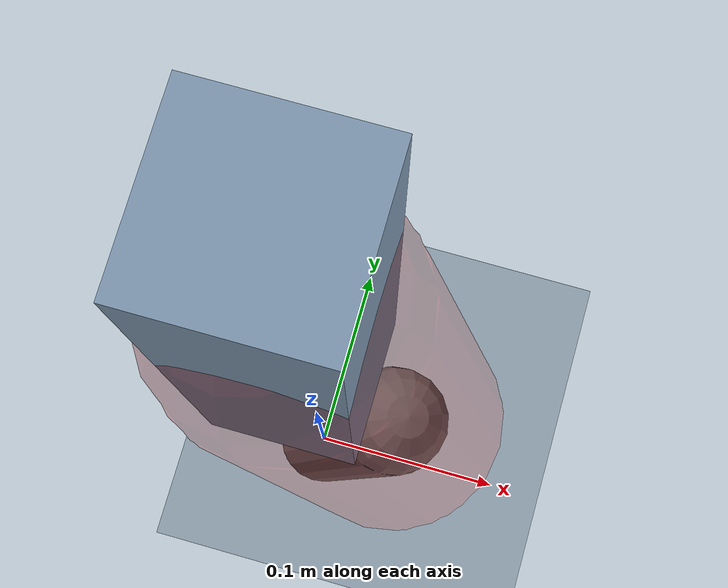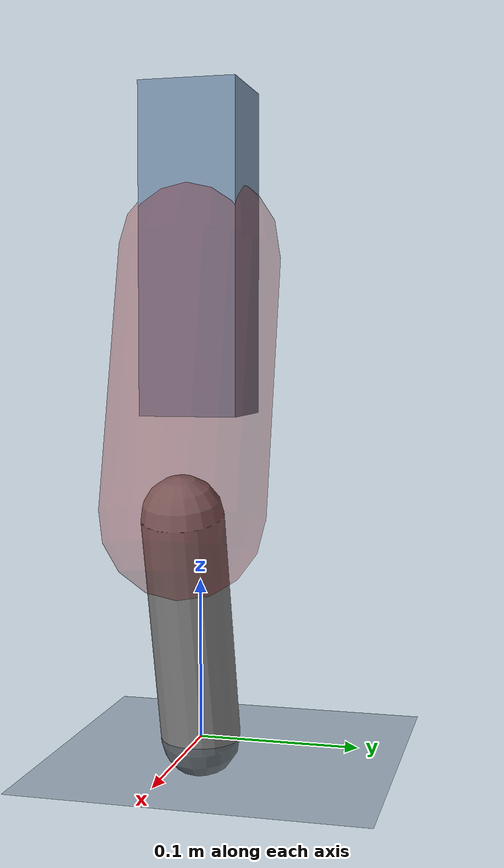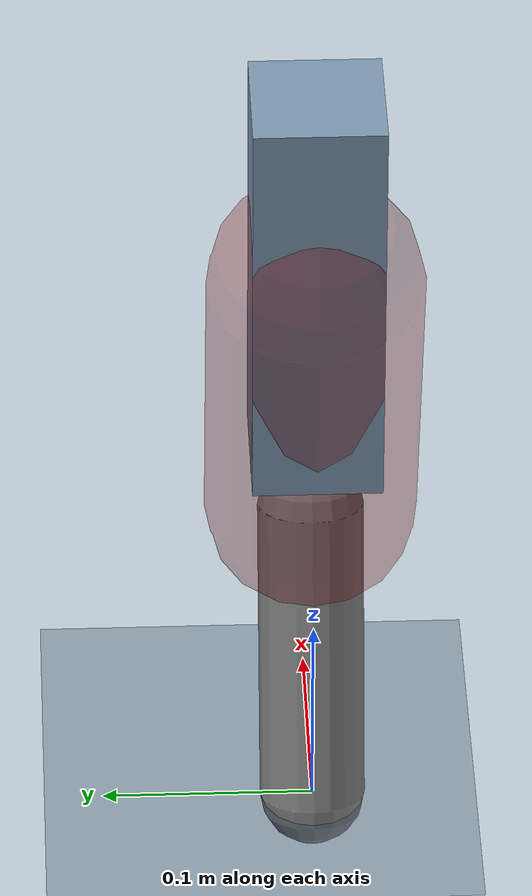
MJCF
<mujoco model="Hopper2D">
	<compiler inertiafromgeom="true" angle="radian" />
	<option timestep="0.001" integrator="implicit" cone="elliptic" solver="Newton" tolerance="1e-10" />

	<default>
		<geom contype="1" conaffinity="1" condim="3" friction="2 0.005 0.0001" solref="0.005 1" />
		<joint limited="true" damping="0.1" />
	</default>

	<asset>
		<texture name="skybox" type="skybox" builtin="gradient" rgb1=".4 .6 .8" rgb2="0 0 0" width="800" height="800" />
		<texture name="grid" type="2d" builtin="checker" rgb1=".1 .2 .3" rgb2=".2 .3 .4" width="300" height="300" mark="edge" markrgb=".2 .3 .4" />
		<material name="ground" texture="grid" texrepeat="1 1" texuniform="true" reflectance="0.1" />
		<material name="leg" rgba="0.5 0.6 0.7 1" />
	</asset>

	<worldbody>

		<geom name="floor" type="plane" size="5 5 0.25" material="ground" />

		<light directional="false" diffuse="0.8 0.8 0.8" specular="0.3 0.3 0.3" pos="0 0 2" dir="0 0 -1" />
		<light mode="targetbodycom" target="base" directional="false" diffuse="0.8 0.8 0.8" specular="0.3 0.3 0.3" pos="0 0 2" dir="0 0 -1" />

		<camera name="fixed" pos="0 -2 1" xyaxes="1 0 0 0 0 1" />
		<camera name="tracking" mode="trackcom" pos="0 -3 1" />

		<body name="root" pos="0 0 0.30384315006497087">
			<joint name="slide_x" type="slide" axis="1 0 0" range="-100 100" />
			<joint name="slide_z" type="slide" axis="0 0 1" range="0 10" />

			<body name="base" pos="0 0 0">
				<geom name="torso" type="box" size="0.03 0.03 0.1" mass="2.15" material="leg" />

				<body name="link1" pos="0 0 0" euler="0 1.328743882196557 0">
					<joint type="hinge" axis="0 -1 0" pos="0 0 0" name="hinge1" limited="true" range="-3.14 3.14" stiffness="0" damping="0.1" />
					<geom name="thigh" type="capsule" fromto="0 0 0 0.16377633222391422 0 0" size="0.05" rgba="0.5 0 0 0.3" mass="0.6413631973373941" />

					<body name="link2" pos="0.16377633222391422 0 0" euler="0 0.5067251682435621 0">
						<joint type="hinge" axis="0 -1 0" pos="0 0 0" name="hinge2" limited="true" range="-3.14 3.14" stiffness="0" damping="0.1" />
						<geom name="shank" type="capsule" fromto="0 0 0 0.15006681784105663 0 0" size="0.025" mass="0.357760136056951" />

					</body>
				</body>
			</body>
		</body>
	</worldbody>

	<actuator>
		<motor name="torque1" joint="hinge1" ctrlrange="-17.32503160967764 17.32503160967764" ctrllimited="true" gear="1" />
		<motor name="torque2" joint="hinge2" ctrlrange="-54.80888581592095 54.80888581592095" ctrllimited="true" gear="1" />
	</actuator>
</mujoco>
